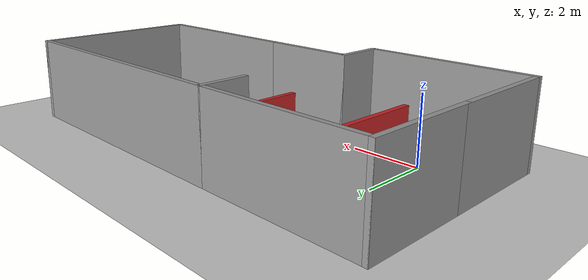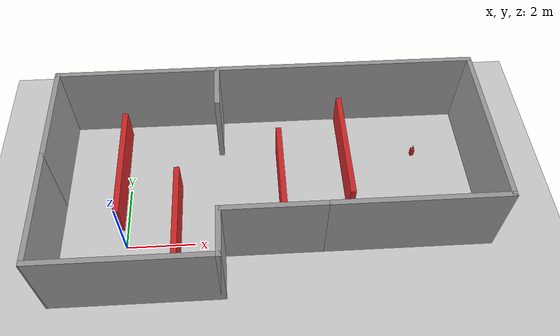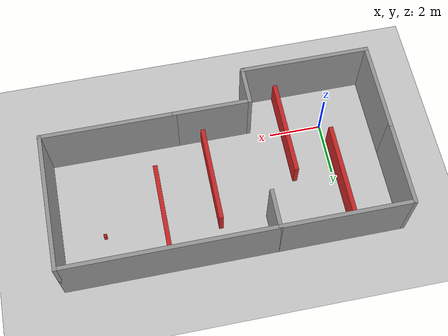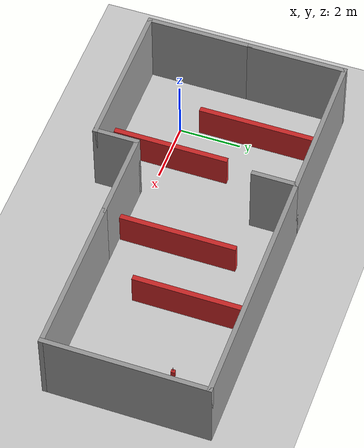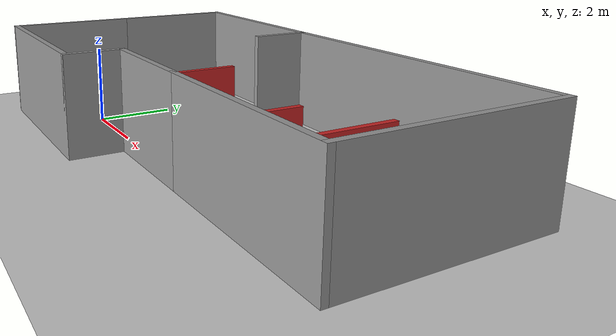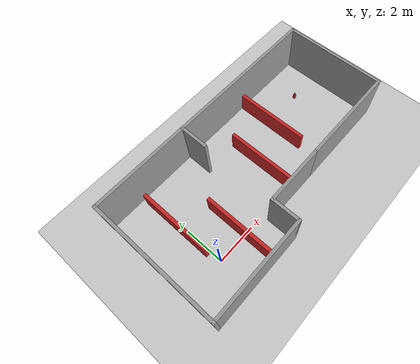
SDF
<sdf version="1.6">
 <world name="default">
  <light name="sun" type="directional">
   <pose>0 0 10 0 -0 0</pose>
   <diffuse>0.8 0.8 0.8 1</diffuse>
   <specular>0.2 0.2 0.2 1</specular>
   <attenuation>
    <range>1000</range>
    <constant>0.9</constant>
    <linear>0.01</linear>
    <quadratic>0.001</quadratic>
   </attenuation>
   <direction>-0.5 0.1 -0.9</direction>
  </light>
  <model name="ground_plane">
   <static>1</static>
   <link name="link">
    <collision name="collision">
     <geometry><plane><normal>0 0 1</normal><size>100 100</size></plane></geometry>
     <surface>
      <contact><collide_bitmask>65535</collide_bitmask></contact>
      <friction><ode><mu>100</mu><mu2>50</mu2></ode></friction>
     </surface>
    </collision>
    <visual name="visual">
     <cast_shadows>0</cast_shadows>
     <geometry><plane><normal>0 0 1</normal><size>100 100</size></plane></geometry>
     <material>
      <script><uri>file://media/materials/scripts/gazebo.material</uri><name>Gazebo/Grey</name></script>
     </material>
    </visual>
   </link>
  </model>
  <gravity>0 0 -9.8</gravity>
  <magnetic_field>6e-06 2.3e-05 -4.2e-05</magnetic_field>
  <atmosphere type="adiabatic"/>
  <physics name="default_physics" default="0" type="ode">
   <max_step_size>0.001</max_step_size>
   <real_time_factor>1</real_time_factor>
   <real_time_update_rate>1000</real_time_update_rate>
  </physics>
  <scene><ambient>0.4 0.4 0.4 1</ambient><background>0.7 0.7 0.7 1</background><shadows>1</shadows></scene>
  <spherical_coordinates>
   <surface_model>EARTH_WGS84</surface_model>
   <latitude_deg>0</latitude_deg>
   <longitude_deg>0</longitude_deg>
   <elevation>0</elevation>
   <heading_deg>0</heading_deg>
  </spherical_coordinates>
  <audio><device>default</device></audio>
  <model name="my_room.sdf">
   <link name="Wall_10">
    <pose>-1.5 -2.55 0 0 -0 1.5708</pose>
    <visual name="Wall_10_Visual">
     <pose>0 0 1.25 0 -0 0</pose>
     <geometry><box><size>1.5 0.15 2.5</size></box></geometry>
     <material>
      <script><uri>file://media/materials/scripts/gazebo.material</uri><name>Gazebo/Grey</name></script>
      <ambient>1 1 1 1</ambient>
     </material>
     <meta><layer>0</layer></meta>
    </visual>
    <collision name="Wall_10_Collision">
     <pose>0 0 1.25 0 -0 0</pose>
     <geometry><box><size>1.5 0.15 2.5</size></box></geometry>
     <surface>
      <friction>
       <ode><mu>1</mu><mu2>1</mu2><fdir1>0 0 0</fdir1><slip1>0</slip1><slip2>0</slip2></ode>
       <torsional>
        <coefficient>1</coefficient>
        <patch_radius>0</patch_radius>
        <surface_radius>0</surface_radius>
        <use_patch_radius>1</use_patch_radius>
        <ode><slip>0</slip></ode>
       </torsional>
      </friction>
      <bounce><restitution_coefficient>0</restitution_coefficient><threshold>1e+06</threshold></bounce>
      <contact>
       <collide_without_contact>0</collide_without_contact>
       <collide_without_contact_bitmask>1</collide_without_contact_bitmask>
       <collide_bitmask>1</collide_bitmask>
       <ode>
        <soft_cfm>0</soft_cfm>
        <soft_erp>0.2</soft_erp>
        <kp>1e+13</kp>
        <kd>1</kd>
        <max_vel>0.01</max_vel>
        <min_depth>0</min_depth>
       </ode>
       <bullet>
        <split_impulse>1</split_impulse>
        <split_impulse_penetration_threshold>-0.01</split_impulse_penetration_threshold>
        <soft_cfm>0</soft_cfm>
        <soft_erp>0.2</soft_erp>
        <kp>1e+13</kp>
        <kd>1</kd>
       </bullet>
      </contact>
     </surface>
    </collision>
   </link>
   <link name="Wall_11">
    <pose>-0.075 -1.875 0 0 -0 0</pose>
    <visual name="Wall_11_Visual">
     <pose>0 0 1.25 0 -0 0</pose>
     <geometry><box><size>3 0.15 2.5</size></box></geometry>
     <material>
      <script><uri>file://media/materials/scripts/gazebo.material</uri><name>Gazebo/Grey</name></script>
      <ambient>1 1 1 1</ambient>
     </material>
     <meta><layer>0</layer></meta>
    </visual>
    <collision name="Wall_11_Collision">
     <pose>0 0 1.25 0 -0 0</pose>
     <geometry><box><size>3 0.15 2.5</size></box></geometry>
     <surface>
      <friction>
       <ode><mu>1</mu><mu2>1</mu2><fdir1>0 0 0</fdir1><slip1>0</slip1><slip2>0</slip2></ode>
       <torsional>
        <coefficient>1</coefficient>
        <patch_radius>0</patch_radius>
        <surface_radius>0</surface_radius>
        <use_patch_radius>1</use_patch_radius>
        <ode><slip>0</slip></ode>
       </torsional>
      </friction>
      <bounce><restitution_coefficient>0</restitution_coefficient><threshold>1e+06</threshold></bounce>
      <contact>
       <collide_without_contact>0</collide_without_contact>
       <collide_without_contact_bitmask>1</collide_without_contact_bitmask>
       <collide_bitmask>1</collide_bitmask>
       <ode>
        <soft_cfm>0</soft_cfm>
        <soft_erp>0.2</soft_erp>
        <kp>1e+13</kp>
        <kd>1</kd>
        <max_vel>0.01</max_vel>
        <min_depth>0</min_depth>
       </ode>
       <bullet>
        <split_impulse>1</split_impulse>
        <split_impulse_penetration_threshold>-0.01</split_impulse_penetration_threshold>
        <soft_cfm>0</soft_cfm>
        <soft_erp>0.2</soft_erp>
        <kp>1e+13</kp>
        <kd>1</kd>
       </bullet>
      </contact>
     </surface>
    </collision>
   </link>
   <link name="Wall_34">
    <pose>-6.35 1.675 0 0 -0 1.5708</pose>
    <visual name="Wall_34_Visual">
     <pose>0 0 1.25 0 -0 0</pose>
     <geometry><box><size>3.25 0.15 2.5</size></box></geometry>
     <material>
      <script><uri>file://media/materials/scripts/gazebo.material</uri><name>Gazebo/Grey</name></script>
      <ambient>1 1 1 1</ambient>
     </material>
     <meta><layer>0</layer></meta>
    </visual>
    <collision name="Wall_34_Collision">
     <pose>0 0 1.25 0 -0 0</pose>
     <geometry><box><size>3.25 0.15 2.5</size></box></geometry>
     <surface>
      <friction>
       <ode><mu>1</mu><mu2>1</mu2><fdir1>0 0 0</fdir1><slip1>0</slip1><slip2>0</slip2></ode>
       <torsional>
        <coefficient>1</coefficient>
        <patch_radius>0</patch_radius>
        <surface_radius>0</surface_radius>
        <use_patch_radius>1</use_patch_radius>
        <ode><slip>0</slip></ode>
       </torsional>
      </friction>
      <bounce><restitution_coefficient>0</restitution_coefficient><threshold>1e+06</threshold></bounce>
      <contact>
       <collide_without_contact>0</collide_without_contact>
       <collide_without_contact_bitmask>1</collide_without_contact_bitmask>
       <collide_bitmask>1</collide_bitmask>
       <ode>
        <soft_cfm>0</soft_cfm>
        <soft_erp>0.2</soft_erp>
        <kp>1e+13</kp>
        <kd>1</kd>
        <max_vel>0.01</max_vel>
        <min_depth>0</min_depth>
       </ode>
       <bullet>
        <split_impulse>1</split_impulse>
        <split_impulse_penetration_threshold>-0.01</split_impulse_penetration_threshold>
        <soft_cfm>0</soft_cfm>
        <soft_erp>0.2</soft_erp>
        <kp>1e+13</kp>
        <kd>1</kd>
       </bullet>
      </contact>
     </surface>
    </collision>
   </link>
   <link name="Wall_35">
    <pose>-3.925 3.225 0 0 -0 0</pose>
    <visual name="Wall_35_Visual">
     <pose>0 0 1.25 0 -0 0</pose>
     <geometry><box><size>5 0.15 2.5</size></box></geometry>
     <material>
      <script><uri>file://media/materials/scripts/gazebo.material</uri><name>Gazebo/Grey</name></script>
      <ambient>1 1 1 1</ambient>
     </material>
     <meta><layer>0</layer></meta>
    </visual>
    <collision name="Wall_35_Collision">
     <pose>0 0 1.25 0 -0 0</pose>
     <geometry><box><size>5 0.15 2.5</size></box></geometry>
     <surface>
      <friction>
       <ode><mu>1</mu><mu2>1</mu2><fdir1>0 0 0</fdir1><slip1>0</slip1><slip2>0</slip2></ode>
       <torsional>
        <coefficient>1</coefficient>
        <patch_radius>0</patch_radius>
        <surface_radius>0</surface_radius>
        <use_patch_radius>1</use_patch_radius>
        <ode><slip>0</slip></ode>
       </torsional>
      </friction>
      <bounce><restitution_coefficient>0</restitution_coefficient><threshold>1e+06</threshold></bounce>
      <contact>
       <collide_without_contact>0</collide_without_contact>
       <collide_without_contact_bitmask>1</collide_without_contact_bitmask>
       <collide_bitmask>1</collide_bitmask>
       <ode>
        <soft_cfm>0</soft_cfm>
        <soft_erp>0.2</soft_erp>
        <kp>1e+13</kp>
        <kd>1</kd>
        <max_vel>0.01</max_vel>
        <min_depth>0</min_depth>
       </ode>
       <bullet>
        <split_impulse>1</split_impulse>
        <split_impulse_penetration_threshold>-0.01</split_impulse_penetration_threshold>
        <soft_cfm>0</soft_cfm>
        <soft_erp>0.2</soft_erp>
        <kp>1e+13</kp>
        <kd>1</kd>
       </bullet>
      </contact>
     </surface>
    </collision>
   </link>
   <link name="Wall_48">
    <pose>-1.5 2.55 0 0 0 -1.5708</pose>
    <visual name="Wall_48_Visual">
     <pose>0 0 1.25 0 -0 0</pose>
     <geometry><box><size>1.5 0.15 2.5</size></box></geometry>
     <material>
      <script><uri>file://media/materials/scripts/gazebo.material</uri><name>Gazebo/Grey</name></script>
      <ambient>1 1 1 1</ambient>
     </material>
     <meta><layer>0</layer></meta>
    </visual>
    <collision name="Wall_48_Collision">
     <pose>0 0 1.25 0 -0 0</pose>
     <geometry><box><size>1.5 0.15 2.5</size></box></geometry>
     <surface>
      <friction>
       <ode><mu>1</mu><mu2>1</mu2><fdir1>0 0 0</fdir1><slip1>0</slip1><slip2>0</slip2></ode>
       <torsional>
        <coefficient>1</coefficient>
        <patch_radius>0</patch_radius>
        <surface_radius>0</surface_radius>
        <use_patch_radius>1</use_patch_radius>
        <ode><slip>0</slip></ode>
       </torsional>
      </friction>
      <bounce><restitution_coefficient>0</restitution_coefficient><threshold>1e+06</threshold></bounce>
      <contact>
       <collide_without_contact>0</collide_without_contact>
       <collide_without_contact_bitmask>1</collide_without_contact_bitmask>
       <collide_bitmask>1</collide_bitmask>
       <ode>
        <soft_cfm>0</soft_cfm>
        <soft_erp>0.2</soft_erp>
        <kp>1e+13</kp>
        <kd>1</kd>
        <max_vel>0.01</max_vel>
        <min_depth>0</min_depth>
       </ode>
       <bullet>
        <split_impulse>1</split_impulse>
        <split_impulse_penetration_threshold>-0.01</split_impulse_penetration_threshold>
        <soft_cfm>0</soft_cfm>
        <soft_erp>0.2</soft_erp>
        <kp>1e+13</kp>
        <kd>1</kd>
       </bullet>
      </contact>
     </surface>
    </collision>
   </link>
   <link name="Wall_5">
    <pose>-3.925 -3.225 0 0 -0 0</pose>
    <visual name="Wall_5_Visual">
     <pose>0 0 1.25 0 -0 0</pose>
     <geometry><box><size>5 0.15 2.5</size></box></geometry>
     <material>
      <script><uri>file://media/materials/scripts/gazebo.material</uri><name>Gazebo/Grey</name></script>
      <ambient>1 1 1 1</ambient>
     </material>
     <meta><layer>0</layer></meta>
    </visual>
    <collision name="Wall_5_Collision">
     <pose>0 0 1.25 0 -0 0</pose>
     <geometry><box><size>5 0.15 2.5</size></box></geometry>
     <surface>
      <friction>
       <ode><mu>1</mu><mu2>1</mu2><fdir1>0 0 0</fdir1><slip1>0</slip1><slip2>0</slip2></ode>
       <torsional>
        <coefficient>1</coefficient>
        <patch_radius>0</patch_radius>
        <surface_radius>0</surface_radius>
        <use_patch_radius>1</use_patch_radius>
        <ode><slip>0</slip></ode>
       </torsional>
      </friction>
      <bounce><restitution_coefficient>0</restitution_coefficient><threshold>1e+06</threshold></bounce>
      <contact>
       <collide_without_contact>0</collide_without_contact>
       <collide_without_contact_bitmask>1</collide_without_contact_bitmask>
       <collide_bitmask>1</collide_bitmask>
       <ode>
        <soft_cfm>0</soft_cfm>
        <soft_erp>0.2</soft_erp>
        <kp>1e+13</kp>
        <kd>1</kd>
        <max_vel>0.01</max_vel>
        <min_depth>0</min_depth>
       </ode>
       <bullet>
        <split_impulse>1</split_impulse>
        <split_impulse_penetration_threshold>-0.01</split_impulse_penetration_threshold>
        <soft_cfm>0</soft_cfm>
        <soft_erp>0.2</soft_erp>
        <kp>1e+13</kp>
        <kd>1</kd>
       </bullet>
      </contact>
     </surface>
    </collision>
   </link>
   <link name="Wall_50">
    <pose>2.425 3.225 0 0 -0 0</pose>
    <visual name="Wall_50_Visual">
     <pose>0 0 1.25 0 -0 0</pose>
     <geometry><box><size>8 0.15 2.5</size></box></geometry>
     <material>
      <script><uri>file://media/materials/scripts/gazebo.material</uri><name>Gazebo/Grey</name></script>
      <ambient>1 1 1 1</ambient>
     </material>
     <meta><layer>0</layer></meta>
    </visual>
    <collision name="Wall_50_Collision">
     <pose>0 0 1.25 0 -0 0</pose>
     <geometry><box><size>8 0.15 2.5</size></box></geometry>
     <surface>
      <friction>
       <ode><mu>1</mu><mu2>1</mu2><fdir1>0 0 0</fdir1><slip1>0</slip1><slip2>0</slip2></ode>
       <torsional>
        <coefficient>1</coefficient>
        <patch_radius>0</patch_radius>
        <surface_radius>0</surface_radius>
        <use_patch_radius>1</use_patch_radius>
        <ode><slip>0</slip></ode>
       </torsional>
      </friction>
      <bounce><restitution_coefficient>0</restitution_coefficient><threshold>1e+06</threshold></bounce>
      <contact>
       <collide_without_contact>0</collide_without_contact>
       <collide_without_contact_bitmask>1</collide_without_contact_bitmask>
       <collide_bitmask>1</collide_bitmask>
       <ode>
        <soft_cfm>0</soft_cfm>
        <soft_erp>0.2</soft_erp>
        <kp>1e+13</kp>
        <kd>1</kd>
        <max_vel>0.01</max_vel>
        <min_depth>0</min_depth>
       </ode>
       <bullet>
        <split_impulse>1</split_impulse>
        <split_impulse_penetration_threshold>-0.01</split_impulse_penetration_threshold>
        <soft_cfm>0</soft_cfm>
        <soft_erp>0.2</soft_erp>
        <kp>1e+13</kp>
        <kd>1</kd>
       </bullet>
      </contact>
     </surface>
    </collision>
   </link>
   <link name="Wall_51">
    <pose>6.35 0.675 0 0 0 -1.5708</pose>
    <visual name="Wall_51_Visual">
     <pose>0 0 1.25 0 -0 0</pose>
     <geometry><box><size>5.25 0.15 2.5</size></box></geometry>
     <material>
      <script><uri>file://media/materials/scripts/gazebo.material</uri><name>Gazebo/Grey</name></script>
      <ambient>1 1 1 1</ambient>
     </material>
     <meta><layer>0</layer></meta>
    </visual>
    <collision name="Wall_51_Collision">
     <pose>0 0 1.25 0 -0 0</pose>
     <geometry><box><size>5.25 0.15 2.5</size></box></geometry>
     <surface>
      <friction>
       <ode><mu>1</mu><mu2>1</mu2><fdir1>0 0 0</fdir1><slip1>0</slip1><slip2>0</slip2></ode>
       <torsional>
        <coefficient>1</coefficient>
        <patch_radius>0</patch_radius>
        <surface_radius>0</surface_radius>
        <use_patch_radius>1</use_patch_radius>
        <ode><slip>0</slip></ode>
       </torsional>
      </friction>
      <bounce><restitution_coefficient>0</restitution_coefficient><threshold>1e+06</threshold></bounce>
      <contact>
       <collide_without_contact>0</collide_without_contact>
       <collide_without_contact_bitmask>1</collide_without_contact_bitmask>
       <collide_bitmask>1</collide_bitmask>
       <ode>
        <soft_cfm>0</soft_cfm>
        <soft_erp>0.2</soft_erp>
        <kp>1e+13</kp>
        <kd>1</kd>
        <max_vel>0.01</max_vel>
        <min_depth>0</min_depth>
       </ode>
       <bullet>
        <split_impulse>1</split_impulse>
        <split_impulse_penetration_threshold>-0.01</split_impulse_penetration_threshold>
        <soft_cfm>0</soft_cfm>
        <soft_erp>0.2</soft_erp>
        <kp>1e+13</kp>
        <kd>1</kd>
       </bullet>
      </contact>
     </surface>
    </collision>
   </link>
   <link name="Wall_52">
    <pose>3.85 -1.875 0 0 -0 3.14159</pose>
    <visual name="Wall_52_Visual">
     <pose>0 0 1.25 0 -0 0</pose>
     <geometry><box><size>5.15 0.15 2.5</size></box></geometry>
     <material>
      <script><uri>file://media/materials/scripts/gazebo.material</uri><name>Gazebo/Grey</name></script>
      <ambient>1 1 1 1</ambient>
     </material>
     <meta><layer>0</layer></meta>
    </visual>
    <collision name="Wall_52_Collision">
     <pose>0 0 1.25 0 -0 0</pose>
     <geometry><box><size>5.15 0.15 2.5</size></box></geometry>
     <surface>
      <friction>
       <ode><mu>1</mu><mu2>1</mu2><fdir1>0 0 0</fdir1><slip1>0</slip1><slip2>0</slip2></ode>
       <torsional>
        <coefficient>1</coefficient>
        <patch_radius>0</patch_radius>
        <surface_radius>0</surface_radius>
        <use_patch_radius>1</use_patch_radius>
        <ode><slip>0</slip></ode>
       </torsional>
      </friction>
      <bounce><restitution_coefficient>0</restitution_coefficient><threshold>1e+06</threshold></bounce>
      <contact>
       <collide_without_contact>0</collide_without_contact>
       <collide_without_contact_bitmask>1</collide_without_contact_bitmask>
       <collide_bitmask>1</collide_bitmask>
       <ode>
        <soft_cfm>0</soft_cfm>
        <soft_erp>0.2</soft_erp>
        <kp>1e+13</kp>
        <kd>1</kd>
        <max_vel>0.01</max_vel>
        <min_depth>0</min_depth>
       </ode>
       <bullet>
        <split_impulse>1</split_impulse>
        <split_impulse_penetration_threshold>-0.01</split_impulse_penetration_threshold>
        <soft_cfm>0</soft_cfm>
        <soft_erp>0.2</soft_erp>
        <kp>1e+13</kp>
        <kd>1</kd>
       </bullet>
      </contact>
     </surface>
    </collision>
   </link>
   <link name="Wall_7">
    <pose>-6.35 -1.55 0 0 -0 1.5708</pose>
    <visual name="Wall_7_Visual">
     <pose>0 0 1.25 0 -0 0</pose>
     <geometry><box><size>3.5 0.15 2.5</size></box></geometry>
     <material>
      <script><uri>file://media/materials/scripts/gazebo.material</uri><name>Gazebo/Grey</name></script>
      <ambient>1 1 1 1</ambient>
     </material>
     <meta><layer>0</layer></meta>
    </visual>
    <collision name="Wall_7_Collision">
     <pose>0 0 1.25 0 -0 0</pose>
     <geometry><box><size>3.5 0.15 2.5</size></box></geometry>
     <surface>
      <friction>
       <ode><mu>1</mu><mu2>1</mu2><fdir1>0 0 0</fdir1><slip1>0</slip1><slip2>0</slip2></ode>
       <torsional>
        <coefficient>1</coefficient>
        <patch_radius>0</patch_radius>
        <surface_radius>0</surface_radius>
        <use_patch_radius>1</use_patch_radius>
        <ode><slip>0</slip></ode>
       </torsional>
      </friction>
      <bounce><restitution_coefficient>0</restitution_coefficient><threshold>1e+06</threshold></bounce>
      <contact>
       <collide_without_contact>0</collide_without_contact>
       <collide_without_contact_bitmask>1</collide_without_contact_bitmask>
       <collide_bitmask>1</collide_bitmask>
       <ode>
        <soft_cfm>0</soft_cfm>
        <soft_erp>0.2</soft_erp>
        <kp>1e+13</kp>
        <kd>1</kd>
        <max_vel>0.01</max_vel>
        <min_depth>0</min_depth>
       </ode>
       <bullet>
        <split_impulse>1</split_impulse>
        <split_impulse_penetration_threshold>-0.01</split_impulse_penetration_threshold>
        <soft_cfm>0</soft_cfm>
        <soft_erp>0.2</soft_erp>
        <kp>1e+13</kp>
        <kd>1</kd>
       </bullet>
      </contact>
     </surface>
    </collision>
   </link>
   <static>1</static>
   <pose>4.33011 1.50571 0 0 -0 0</pose>
  </model>
  <model name="box_obstacle">
   <link name="link">
    <inertial>
     <mass>5.41137</mass>
     <inertia><ixx>6.80302</ixx><ixy>0</ixy><ixz>0</ixz><iyy>0.521067</iyy><iyz>0</iyz><izz>6.30851</izz></inertia>
    </inertial>
    <pose>-1.40063 1.77974 0.398981 0 -0 0</pose>
    <visual name="visual">
     <geometry><box><size>0.171621 3.73631 1.06115</size></box></geometry>
     <material>
      <script><name>Gazebo/Red</name><uri>file://media/materials/scripts/gazebo.material</uri></script>
      <shader type="vertex"><normal_map>__default__</normal_map></shader>
      <ambient>1 0 0 1</ambient>
      <diffuse>0.7 0.7 0.7 1</diffuse>
      <specular>0.01 0.01 0.01 1</specular>
      <emissive>0 0 0 1</emissive>
     </material>
    </visual>
    <collision name="collision">
     <geometry><box><size>0.171621 3.73631 1.06115</size></box></geometry>
     <surface>
      <friction>
       <ode><mu>0</mu><mu2>0</mu2><fdir1>0 0 0</fdir1><slip1>0</slip1><slip2>0</slip2></ode>
       <torsional>
        <coefficient>1</coefficient>
        <patch_radius>0</patch_radius>
        <surface_radius>0</surface_radius>
        <use_patch_radius>1</use_patch_radius>
        <ode><slip>0</slip></ode>
       </torsional>
      </friction>
      <bounce><restitution_coefficient>0</restitution_coefficient><threshold>1e+06</threshold></bounce>
      <contact>
       <collide_without_contact>0</collide_without_contact>
       <collide_without_contact_bitmask>1</collide_without_contact_bitmask>
       <collide_bitmask>1</collide_bitmask>
       <ode>
        <soft_cfm>0</soft_cfm>
        <soft_erp>0.2</soft_erp>
        <kp>1e+13</kp>
        <kd>1</kd>
        <max_vel>0.01</max_vel>
        <min_depth>0</min_depth>
       </ode>
       <bullet>
        <split_impulse>1</split_impulse>
        <split_impulse_penetration_threshold>-0.01</split_impulse_penetration_threshold>
        <soft_cfm>0</soft_cfm>
        <soft_erp>0.2</soft_erp>
        <kp>1e+13</kp>
        <kd>1</kd>
       </bullet>
      </contact>
     </surface>
    </collision>
   </link>
   <static>0</static>
   <pose>1.19995 0.689149 0.131571 6e-06 -0 5e-06</pose>
  </model>
  <model name="box_obstacle_1">
   <link name="link">
    <inertial>
     <mass>5.41137</mass>
     <inertia><ixx>6.80302</ixx><ixy>0</ixy><ixz>0</ixz><iyy>0.521067</iyy><iyz>0</iyz><izz>6.30851</izz></inertia>
    </inertial>
    <pose>-1.40063 1.77974 0.398981 0 -0 0</pose>
    <visual name="visual">
     <geometry><box><size>0.171621 3.73631 1.06115</size></box></geometry>
     <material>
      <script><name>Gazebo/Red</name><uri>file://media/materials/scripts/gazebo.material</uri></script>
      <shader type="vertex"><normal_map>__default__</normal_map></shader>
      <ambient>1 0 0 1</ambient>
      <diffuse>0.7 0.7 0.7 1</diffuse>
      <specular>0.01 0.01 0.01 1</specular>
      <emissive>0 0 0 1</emissive>
     </material>
    </visual>
    <collision name="collision">
     <geometry><box><size>0.171621 3.73631 1.06115</size></box></geometry>
     <surface>
      <friction>
       <ode><mu>0</mu><mu2>0</mu2><fdir1>0 0 0</fdir1><slip1>0</slip1><slip2>0</slip2></ode>
       <torsional>
        <coefficient>1</coefficient>
        <patch_radius>0</patch_radius>
        <surface_radius>0</surface_radius>
        <use_patch_radius>1</use_patch_radius>
        <ode><slip>0</slip></ode>
       </torsional>
      </friction>
      <bounce><restitution_coefficient>0</restitution_coefficient><threshold>1e+06</threshold></bounce>
      <contact>
       <collide_without_contact>0</collide_without_contact>
       <collide_without_contact_bitmask>1</collide_without_contact_bitmask>
       <collide_bitmask>1</collide_bitmask>
       <ode>
        <soft_cfm>0</soft_cfm>
        <soft_erp>0.2</soft_erp>
        <kp>1e+13</kp>
        <kd>1</kd>
        <max_vel>0.01</max_vel>
        <min_depth>0</min_depth>
       </ode>
       <bullet>
        <split_impulse>1</split_impulse>
        <split_impulse_penetration_threshold>-0.01</split_impulse_penetration_threshold>
        <soft_cfm>0</soft_cfm>
        <soft_erp>0.2</soft_erp>
        <kp>1e+13</kp>
        <kd>1</kd>
       </bullet>
      </contact>
     </surface>
    </collision>
   </link>
   <static>0</static>
   <pose>2.90535 -1.54514 0.131594 0 -0 0.000457</pose>
  </model>
  <model name="box_obstacle_0">
   <link name="link">
    <inertial>
     <mass>5.41137</mass>
     <inertia><ixx>6.80302</ixx><ixy>0</ixy><ixz>0</ixz><iyy>0.521067</iyy><iyz>0</iyz><izz>6.30851</izz></inertia>
    </inertial>
    <pose>-1.40063 1.77974 0.398981 0 -0 0</pose>
    <visual name="visual">
     <geometry><box><size>0.171621 3.73631 1.06115</size></box></geometry>
     <material>
      <script><name>Gazebo/Red</name><uri>file://media/materials/scripts/gazebo.material</uri></script>
      <shader type="vertex"><normal_map>__default__</normal_map></shader>
      <ambient>1 0 0 1</ambient>
      <diffuse>0.7 0.7 0.7 1</diffuse>
      <specular>0.01 0.01 0.01 1</specular>
      <emissive>0 0 0 1</emissive>
     </material>
    </visual>
    <collision name="collision">
     <geometry><box><size>0.171621 3.73631 1.06115</size></box></geometry>
     <surface>
      <friction>
       <ode><mu>0</mu><mu2>0</mu2><fdir1>0 0 0</fdir1><slip1>0</slip1><slip2>0</slip2></ode>
       <torsional>
        <coefficient>1</coefficient>
        <patch_radius>0</patch_radius>
        <surface_radius>0</surface_radius>
        <use_patch_radius>1</use_patch_radius>
        <ode><slip>0</slip></ode>
       </torsional>
      </friction>
      <bounce><restitution_coefficient>0</restitution_coefficient><threshold>1e+06</threshold></bounce>
      <contact>
       <collide_without_contact>0</collide_without_contact>
       <collide_without_contact_bitmask>1</collide_without_contact_bitmask>
       <collide_bitmask>1</collide_bitmask>
       <ode>
        <soft_cfm>0</soft_cfm>
        <soft_erp>0.2</soft_erp>
        <kp>1e+13</kp>
        <kd>1</kd>
        <max_vel>0.01</max_vel>
        <min_depth>0</min_depth>
       </ode>
       <bullet>
        <split_impulse>1</split_impulse>
        <split_impulse_penetration_threshold>-0.01</split_impulse_penetration_threshold>
        <soft_cfm>0</soft_cfm>
        <soft_erp>0.2</soft_erp>
        <kp>1e+13</kp>
        <kd>1</kd>
       </bullet>
      </contact>
     </surface>
    </collision>
   </link>
   <static>0</static>
   <pose>6.07066 -0.173192 0.131593 -6e-06 0 0</pose>
  </model>
  <model name="box_obstacle_2">
   <link name="link">
    <inertial>
     <mass>5.41137</mass>
     <inertia><ixx>6.80302</ixx><ixy>0</ixy><ixz>0</ixz><iyy>0.521067</iyy><iyz>0</iyz><izz>6.30851</izz></inertia>
    </inertial>
    <pose>-1.40063 1.77974 0.398981 0 -0 0</pose>
    <visual name="visual">
     <geometry><box><size>0.171621 3.73631 1.06115</size></box></geometry>
     <material>
      <script><name>Gazebo/Red</name><uri>file://media/materials/scripts/gazebo.material</uri></script>
      <shader type="vertex"><normal_map>__default__</normal_map></shader>
      <ambient>1 0 0 1</ambient>
      <diffuse>0.7 0.7 0.7 1</diffuse>
      <specular>0.01 0.01 0.01 1</specular>
      <emissive>0 0 0 1</emissive>
     </material>
    </visual>
    <collision name="collision">
     <geometry><box><size>0.171621 3.73631 1.06115</size></box></geometry>
     <surface>
      <friction>
       <ode><mu>0</mu><mu2>0</mu2><fdir1>0 0 0</fdir1><slip1>0</slip1><slip2>0</slip2></ode>
       <torsional>
        <coefficient>1</coefficient>
        <patch_radius>0</patch_radius>
        <surface_radius>0</surface_radius>
        <use_patch_radius>1</use_patch_radius>
        <ode><slip>0</slip></ode>
       </torsional>
      </friction>
      <bounce><restitution_coefficient>0</restitution_coefficient><threshold>1e+06</threshold></bounce>
      <contact>
       <collide_without_contact>0</collide_without_contact>
       <collide_without_contact_bitmask>1</collide_without_contact_bitmask>
       <collide_bitmask>1</collide_bitmask>
       <ode>
        <soft_cfm>0</soft_cfm>
        <soft_erp>0.2</soft_erp>
        <kp>1e+13</kp>
        <kd>1</kd>
        <max_vel>0.01</max_vel>
        <min_depth>0</min_depth>
       </ode>
       <bullet>
        <split_impulse>1</split_impulse>
        <split_impulse_penetration_threshold>-0.01</split_impulse_penetration_threshold>
        <soft_cfm>0</soft_cfm>
        <soft_erp>0.2</soft_erp>
        <kp>1e+13</kp>
        <kd>1</kd>
       </bullet>
      </contact>
     </surface>
    </collision>
   </link>
   <static>0</static>
   <pose>8.11918 0.984348 0.131593 -6e-06 0 0</pose>
  </model>
  <model name="pick_up_model">
   <link name="link">
    <inertial>
     <mass>1</mass>
     <inertia><ixx>0.145833</ixx><ixy>0</ixy><ixz>0</ixz><iyy>0.145833</iyy><iyz>0</iyz><izz>0.125</izz></inertia>
    </inertial>
    <visual name="visual">
     <geometry><cylinder><radius>0.01</radius><length>0.15</length></cylinder></geometry>
     <material>
      <script><name>Gazebo/Grey</name><uri>file://media/materials/scripts/gazebo.material</uri></script>
      <shader type="vertex"><normal_map>__default__</normal_map></shader>
      <ambient>0.3 0.3 0.3 1</ambient>
      <diffuse>0.7 0.7 0.7 1</diffuse>
      <specular>0.01 0.01 0.01 1</specular>
      <emissive>0 0 0 1</emissive>
     </material>
    </visual>
    <collision name="collision">
     <geometry><cylinder><radius>0.01</radius><length>0.15</length></cylinder></geometry>
     <surface>
      <friction>
       <ode><mu>1</mu><mu2>1</mu2><fdir1>0 0 0</fdir1><slip1>0</slip1><slip2>0</slip2></ode>
       <torsional>
        <coefficient>1</coefficient>
        <patch_radius>0</patch_radius>
        <surface_radius>0</surface_radius>
        <use_patch_radius>1</use_patch_radius>
        <ode><slip>0</slip></ode>
       </torsional>
      </friction>
      <bounce><restitution_coefficient>0</restitution_coefficient><threshold>1e+06</threshold></bounce>
      <contact>
       <collide_without_contact>0</collide_without_contact>
       <collide_without_contact_bitmask>1</collide_without_contact_bitmask>
       <collide_bitmask>1</collide_bitmask>
       <ode>
        <soft_cfm>0</soft_cfm>
        <soft_erp>0.2</soft_erp>
        <kp>1e+13</kp>
        <kd>1</kd>
        <max_vel>0.01</max_vel>
        <min_depth>0</min_depth>
       </ode>
       <bullet>
        <split_impulse>1</split_impulse>
        <split_impulse_penetration_threshold>-0.01</split_impulse_penetration_threshold>
        <soft_cfm>0</soft_cfm>
        <soft_erp>0.2</soft_erp>
        <kp>1e+13</kp>
        <kd>1</kd>
       </bullet>
      </contact>
     </surface>
    </collision>
   </link>
   <static>0</static>
   <pose>9.00072 2.99966 0.34193 -0.00401 0.02076 -0.004221</pose>
  </model>
  <model name="base_model">
   <link name="link">
    <inertial>
     <mass>0.54624</mass>
     <inertia>
      <ixx>0.0039224</ixx>
      <ixy>0</ixy>
      <ixz>0</ixz>
      <iyy>0.00381993</iyy>
      <iyz>0</iyz>
      <izz>0.00126245</izz>
     </inertia>
    </inertial>
    <visual name="visual">
     <geometry><box><size>0.112878 0.122444 0.266789</size></box></geometry>
     <material>
      <script><name>Gazebo/Red</name><uri>file://media/materials/scripts/gazebo.material</uri></script>
      <shader type="vertex"><normal_map>__default__</normal_map></shader>
      <ambient>1 0 0 1</ambient>
      <diffuse>0.7 0.7 0.7 1</diffuse>
      <specular>0.01 0.01 0.01 1</specular>
      <emissive>0 0 0 1</emissive>
     </material>
    </visual>
    <collision name="collision">
     <geometry><box><size>0.112878 0.122444 0.266789</size></box></geometry>
     <surface>
      <friction>
       <ode><mu>0</mu><mu2>0</mu2><fdir1>0 0 0</fdir1><slip1>0</slip1><slip2>0</slip2></ode>
       <torsional>
        <coefficient>1</coefficient>
        <patch_radius>0</patch_radius>
        <surface_radius>0</surface_radius>
        <use_patch_radius>1</use_patch_radius>
        <ode><slip>0</slip></ode>
       </torsional>
      </friction>
      <bounce><restitution_coefficient>0</restitution_coefficient><threshold>1e+06</threshold></bounce>
      <contact>
       <collide_without_contact>0</collide_without_contact>
       <collide_without_contact_bitmask>1</collide_without_contact_bitmask>
       <collide_bitmask>1</collide_bitmask>
       <ode>
        <soft_cfm>0</soft_cfm>
        <soft_erp>0.2</soft_erp>
        <kp>1e+13</kp>
        <kd>1</kd>
        <max_vel>0.01</max_vel>
        <min_depth>0</min_depth>
       </ode>
       <bullet>
        <split_impulse>1</split_impulse>
        <split_impulse_penetration_threshold>-0.01</split_impulse_penetration_threshold>
        <soft_cfm>0</soft_cfm>
        <soft_erp>0.2</soft_erp>
        <kp>1e+13</kp>
        <kd>1</kd>
       </bullet>
      </contact>
     </surface>
    </collision>
   </link>
   <static>0</static>
   <pose>8.99858 3.00089 0.133354 -1e-06 4.6e-05 -0.0058</pose>
  </model>
 </world>
</sdf>
